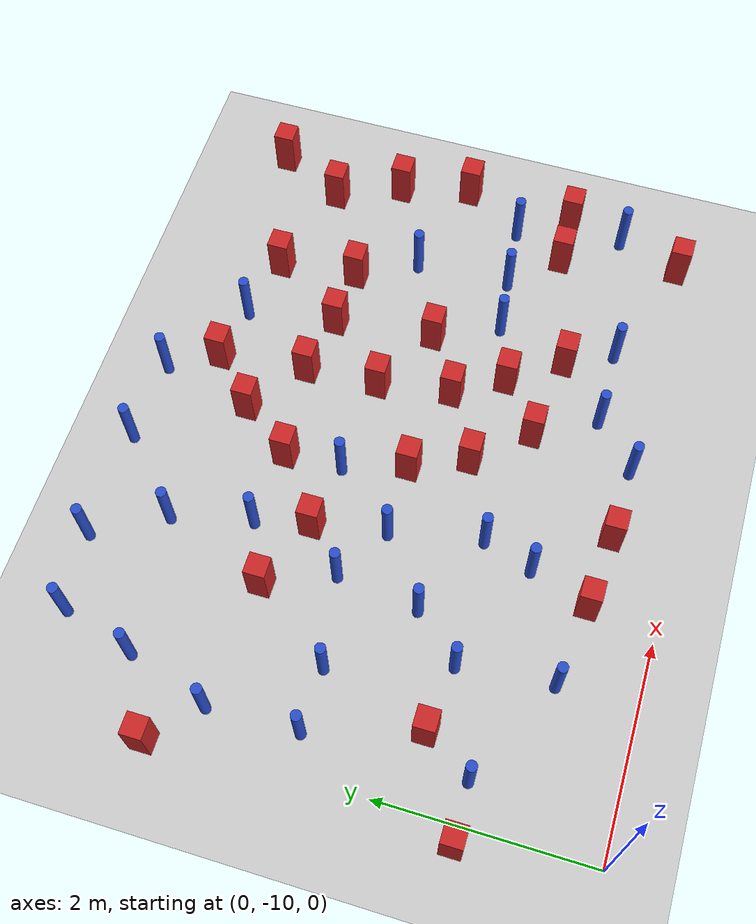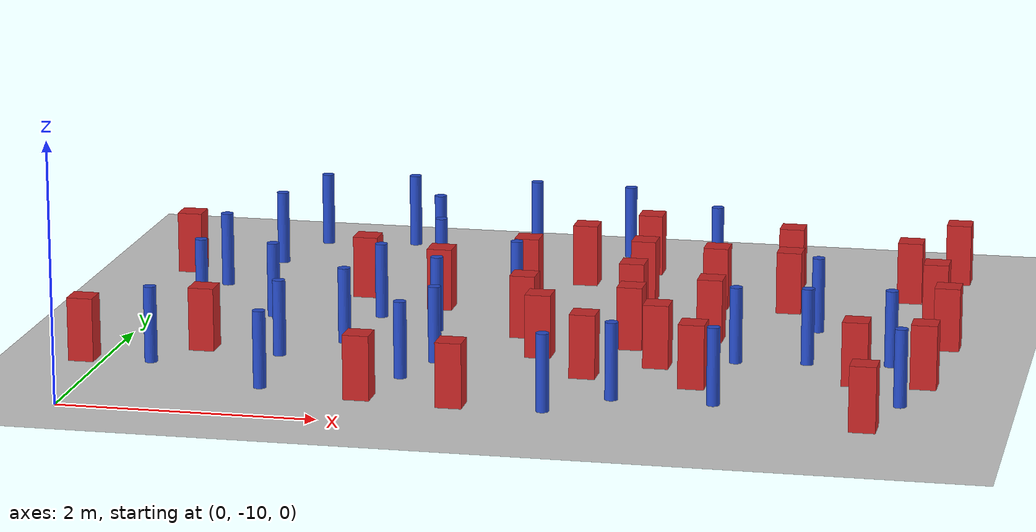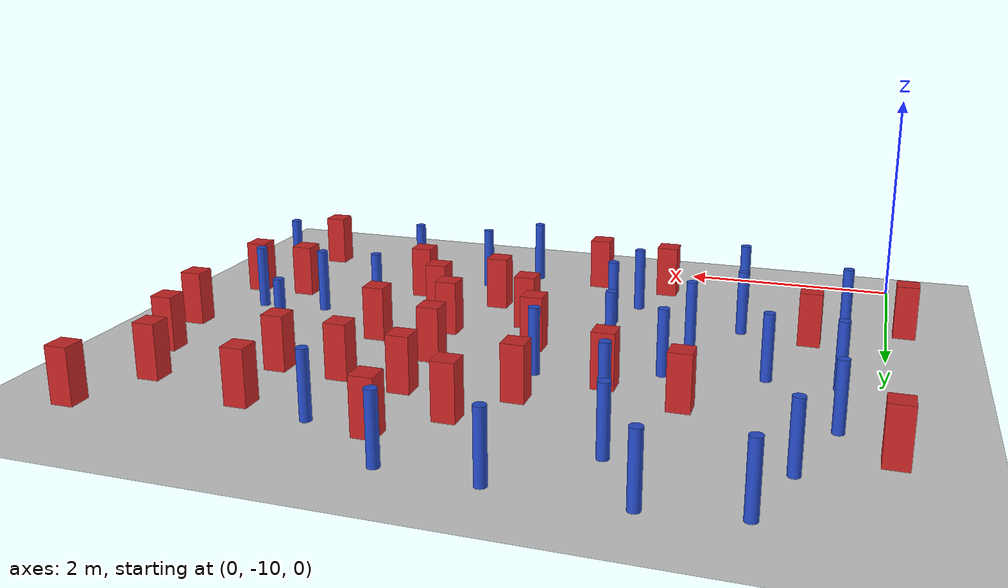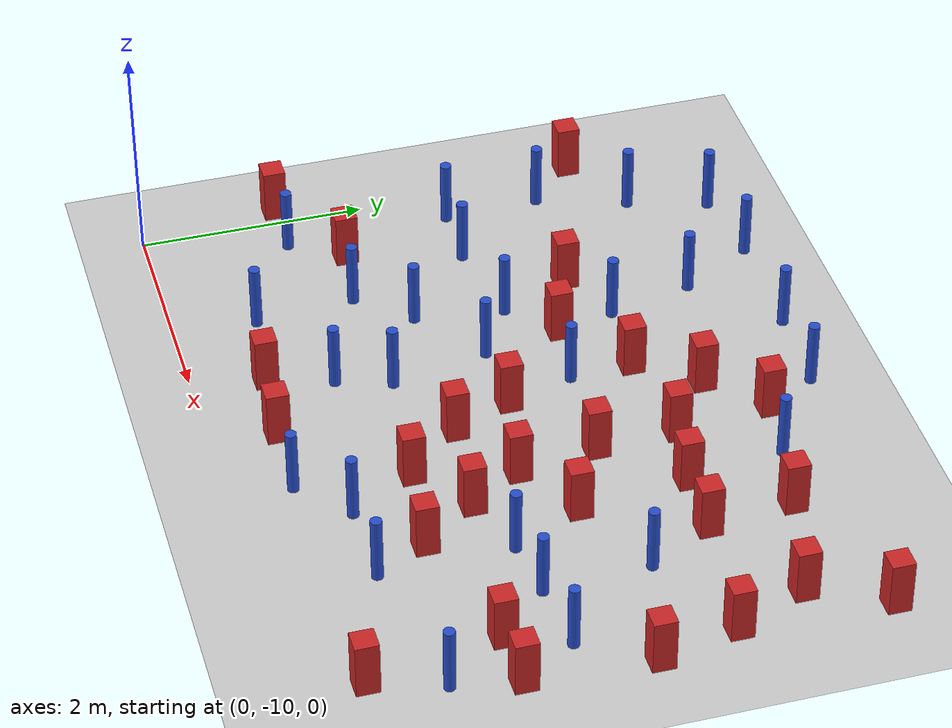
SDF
<sdf version="1.6">
 <world name="default">
  <model name="ground_plane">
   <static>1</static>
   <link name="link">
    <collision name="collision">
     <geometry><plane><normal>0 0 1</normal><size>100 100</size></plane></geometry>
     <surface><friction><ode><mu>100</mu><mu2>50</mu2></ode></friction></surface>
    </collision>
    <visual name="visual">
     <cast_shadows>0</cast_shadows>
     <geometry><plane><normal>0 0 1</normal><size>100 100</size></plane></geometry>
     <material>
      <ambient>1.0 1.0 1.0 1.0</ambient>
      <diffuse>0.8 0.8 0.8 1.0</diffuse>
      <specular>0.01 0.01 0.01 1.000000</specular>
     </material>
    </visual>
   </link>
  </model>
  <model name="square_post_obstacle0">
   <static>true</static>
   <pose>3.03235378317 -7.45072302917 1.91545236811e-07 -7.35059704564e-06 1.12565212e-07 2.39332434364e-05</pose>
   <link name="link">
    <pose>0 0 0.25 0 -0 0</pose>
    <inertial>
     <mass>100</mass>
     <inertia>
      <ixx>0.166667</ixx>
      <ixy>0</ixy>
      <ixz>0</ixz>
      <iyy>0.166667</iyy>
      <iyz>0</iyz>
      <izz>0.166667</izz>
     </inertia>
    </inertial>
    <collision name="collision"><geometry><box><size>.2 .2 .5</size></box></geometry></collision>
    <visual name="visual">
     <geometry><box><size>.2 .2 .5</size></box></geometry>
     <material>
      <script><name>Gazebo/Red</name><uri>file://media/materials/scripts/gazebo.material</uri></script>
     </material>
    </visual>
   </link>
  </model>
  <model name="pole_obstacle0">
   <static>true</static>
   <pose>5.95808666075 -7.75955042571 7.38925637345e-09 -8.47170692796e-08 1.24976764786e-08 -1.74513093032e-07</pose>
   <link name="link">
    <pose>0 0 0.3 0 -0 0</pose>
    <inertial>
     <mass>1</mass>
     <inertia><ixx>0.145833</ixx><ixy>0</ixy><ixz>0</ixz><iyy>0.145833</iyy><iyz>0</iyz><izz>0.125</izz></inertia>
    </inertial>
    <collision name="collision">
     <geometry><cylinder><radius>0.05</radius><length>.6</length></cylinder></geometry>
    </collision>
    <visual name="visual">
     <geometry><cylinder><radius>0.05</radius><length>.6</length></cylinder></geometry>
     <material>
      <script><name>Gazebo/Blue</name><uri>file://media/materials/scripts/gazebo.material</uri></script>
     </material>
    </visual>
   </link>
  </model>
  <model name="pole_obstacle6">
   <static>true</static>
   <pose>4.02126811115 -9.05385986758 7.38925637345e-09 -8.47170692799e-08 1.24976765044e-08 -1.74513093018e-07</pose>
   <link name="link">
    <pose>0 0 0.3 0 -0 0</pose>
    <inertial>
     <mass>1</mass>
     <inertia><ixx>0.145833</ixx><ixy>0</ixy><ixz>0</ixz><iyy>0.145833</iyy><iyz>0</iyz><izz>0.125</izz></inertia>
    </inertial>
    <collision name="collision">
     <geometry><cylinder><radius>0.05</radius><length>.6</length></cylinder></geometry>
    </collision>
    <visual name="visual">
     <geometry><cylinder><radius>0.05</radius><length>.6</length></cylinder></geometry>
     <material>
      <script><name>Gazebo/Blue</name><uri>file://media/materials/scripts/gazebo.material</uri></script>
     </material>
    </visual>
   </link>
  </model>
  <model name="square_post_obstacle13">
   <static>true</static>
   <pose>3.70461877562 -8.47410973414 1.91545236811e-07 -7.35059704564e-06 1.12565212e-07 2.39332434364e-05</pose>
   <link name="link">
    <pose>0 0 0.25 0 -0 0</pose>
    <inertial>
     <mass>100</mass>
     <inertia>
      <ixx>0.166667</ixx>
      <ixy>0</ixy>
      <ixz>0</ixz>
      <iyy>0.166667</iyy>
      <iyz>0</iyz>
      <izz>0.166667</izz>
     </inertia>
    </inertial>
    <collision name="collision"><geometry><box><size>.2 .2 .5</size></box></geometry></collision>
    <visual name="visual">
     <geometry><box><size>.2 .2 .5</size></box></geometry>
     <material>
      <script><name>Gazebo/Red</name><uri>file://media/materials/scripts/gazebo.material</uri></script>
     </material>
    </visual>
   </link>
  </model>
  <model name="pole_obstacle10">
   <static>true</static>
   <pose>3.57856025257 -9.45177462803 7.38925637345e-09 -8.47170692793e-08 1.24976764408e-08 -1.74513093041e-07</pose>
   <link name="link">
    <pose>0 0 0.3 0 -0 0</pose>
    <inertial>
     <mass>1</mass>
     <inertia><ixx>0.145833</ixx><ixy>0</ixy><ixz>0</ixz><iyy>0.145833</iyy><iyz>0</iyz><izz>0.125</izz></inertia>
    </inertial>
    <collision name="collision">
     <geometry><cylinder><radius>0.05</radius><length>.6</length></cylinder></geometry>
    </collision>
    <visual name="visual">
     <geometry><cylinder><radius>0.05</radius><length>.6</length></cylinder></geometry>
     <material>
      <script><name>Gazebo/Blue</name><uri>file://media/materials/scripts/gazebo.material</uri></script>
     </material>
    </visual>
   </link>
  </model>
  <model name="pole_obstacle11">
   <static>true</static>
   <pose>5.32283034793 -7.82426257273 7.38925637345e-09 -8.47170692796e-08 1.24976764786e-08 -1.74513093032e-07</pose>
   <link name="link">
    <pose>0 0 0.3 0 -0 0</pose>
    <inertial>
     <mass>1</mass>
     <inertia><ixx>0.145833</ixx><ixy>0</ixy><ixz>0</ixz><iyy>0.145833</iyy><iyz>0</iyz><izz>0.125</izz></inertia>
    </inertial>
    <collision name="collision">
     <geometry><cylinder><radius>0.05</radius><length>.6</length></cylinder></geometry>
    </collision>
    <visual name="visual">
     <geometry><cylinder><radius>0.05</radius><length>.6</length></cylinder></geometry>
     <material>
      <script><name>Gazebo/Blue</name><uri>file://media/materials/scripts/gazebo.material</uri></script>
     </material>
    </visual>
   </link>
  </model>
  <model name="pole_obstacle14">
   <static>true</static>
   <pose>2.60923949467 -4.84293142465 7.38925637345e-09 -8.47170692798e-08 1.24976765033e-08 -1.74513093019e-07</pose>
   <link name="link">
    <pose>0 0 0.3 0 -0 0</pose>
    <inertial>
     <mass>1</mass>
     <inertia><ixx>0.145833</ixx><ixy>0</ixy><ixz>0</ixz><iyy>0.145833</iyy><iyz>0</iyz><izz>0.125</izz></inertia>
    </inertial>
    <collision name="collision">
     <geometry><cylinder><radius>0.05</radius><length>.6</length></cylinder></geometry>
    </collision>
    <visual name="visual">
     <geometry><cylinder><radius>0.05</radius><length>.6</length></cylinder></geometry>
     <material>
      <script><name>Gazebo/Blue</name><uri>file://media/materials/scripts/gazebo.material</uri></script>
     </material>
    </visual>
   </link>
  </model>
  <model name="pole_obstacle32">
   <static>true</static>
   <pose>1.54902617877 -4.83356348568 7.38925637345e-09 -8.47170692799e-08 1.24976765033e-08 -1.74513093018e-07</pose>
   <link name="link">
    <pose>0 0 0.3 0 -0 0</pose>
    <inertial>
     <mass>1</mass>
     <inertia><ixx>0.145833</ixx><ixy>0</ixy><ixz>0</ixz><iyy>0.145833</iyy><iyz>0</iyz><izz>0.125</izz></inertia>
    </inertial>
    <collision name="collision">
     <geometry><cylinder><radius>0.05</radius><length>.6</length></cylinder></geometry>
    </collision>
    <visual name="visual">
     <geometry><cylinder><radius>0.05</radius><length>.6</length></cylinder></geometry>
     <material>
      <script><name>Gazebo/Blue</name><uri>file://media/materials/scripts/gazebo.material</uri></script>
     </material>
    </visual>
   </link>
  </model>
  <model name="pole_obstacle33">
   <static>true</static>
   <pose>2.84703641741 -6.84884851679 7.38925637345e-09 -8.47170692798e-08 1.24976765033e-08 -1.74513093019e-07</pose>
   <link name="link">
    <pose>0 0 0.3 0 -0 0</pose>
    <inertial>
     <mass>1</mass>
     <inertia><ixx>0.145833</ixx><ixy>0</ixy><ixz>0</ixz><iyy>0.145833</iyy><iyz>0</iyz><izz>0.125</izz></inertia>
    </inertial>
    <collision name="collision">
     <geometry><cylinder><radius>0.05</radius><length>.6</length></cylinder></geometry>
    </collision>
    <visual name="visual">
     <geometry><cylinder><radius>0.05</radius><length>.6</length></cylinder></geometry>
     <material>
      <script><name>Gazebo/Blue</name><uri>file://media/materials/scripts/gazebo.material</uri></script>
     </material>
    </visual>
   </link>
  </model>
  <model name="pole_obstacle35">
   <static>true</static>
   <pose>3.42085930414 -4.87880944352 7.38925637345e-09 -8.47170692798e-08 1.24976765033e-08 -1.74513093019e-07</pose>
   <link name="link">
    <pose>0 0 0.3 0 -0 0</pose>
    <inertial>
     <mass>1</mass>
     <inertia><ixx>0.145833</ixx><ixy>0</ixy><ixz>0</ixz><iyy>0.145833</iyy><iyz>0</iyz><izz>0.125</izz></inertia>
    </inertial>
    <collision name="collision">
     <geometry><cylinder><radius>0.05</radius><length>.6</length></cylinder></geometry>
    </collision>
    <visual name="visual">
     <geometry><cylinder><radius>0.05</radius><length>.6</length></cylinder></geometry>
     <material>
      <script><name>Gazebo/Blue</name><uri>file://media/materials/scripts/gazebo.material</uri></script>
     </material>
    </visual>
   </link>
  </model>
  <model name="pole_obstacle37">
   <static>true</static>
   <pose>2.50806555149 -8.32532895145 7.38925637345e-09 -8.47170692793e-08 1.24976764408e-08 -1.74513093041e-07</pose>
   <link name="link">
    <pose>0 0 0.3 0 -0 0</pose>
    <inertial>
     <mass>1</mass>
     <inertia><ixx>0.145833</ixx><ixy>0</ixy><ixz>0</ixz><iyy>0.145833</iyy><iyz>0</iyz><izz>0.125</izz></inertia>
    </inertial>
    <collision name="collision">
     <geometry><cylinder><radius>0.05</radius><length>.6</length></cylinder></geometry>
    </collision>
    <visual name="visual">
     <geometry><cylinder><radius>0.05</radius><length>.6</length></cylinder></geometry>
     <material>
      <script><name>Gazebo/Blue</name><uri>file://media/materials/scripts/gazebo.material</uri></script>
     </material>
    </visual>
   </link>
  </model>
  <model name="square_post_obstacle38">
   <static>true</static>
   <pose>5.75331840696 -8.27404047727 1.91545236811e-07 -7.35059704564e-06 1.12565212e-07 2.39332434364e-05</pose>
   <link name="link">
    <pose>0 0 0.25 0 -0 0</pose>
    <inertial>
     <mass>100</mass>
     <inertia>
      <ixx>0.166667</ixx>
      <ixy>0</ixy>
      <ixz>0</ixz>
      <iyy>0.166667</iyy>
      <iyz>0</iyz>
      <izz>0.166667</izz>
     </inertia>
    </inertial>
    <collision name="collision"><geometry><box><size>.2 .2 .5</size></box></geometry></collision>
    <visual name="visual">
     <geometry><box><size>.2 .2 .5</size></box></geometry>
     <material>
      <script><name>Gazebo/Red</name><uri>file://media/materials/scripts/gazebo.material</uri></script>
     </material>
    </visual>
   </link>
  </model>
  <model name="square_post_obstacle41">
   <static>true</static>
   <pose>1.54093194746 -6.51098047376 1.91545236811e-07 -7.35059704564e-06 1.12565212e-07 2.39332434364e-05</pose>
   <link name="link">
    <pose>0 0 0.25 0 -0 0</pose>
    <inertial>
     <mass>100</mass>
     <inertia>
      <ixx>0.166667</ixx>
      <ixy>0</ixy>
      <ixz>0</ixz>
      <iyy>0.166667</iyy>
      <iyz>0</iyz>
      <izz>0.166667</izz>
     </inertia>
    </inertial>
    <collision name="collision"><geometry><box><size>.2 .2 .5</size></box></geometry></collision>
    <visual name="visual">
     <geometry><box><size>.2 .2 .5</size></box></geometry>
     <material>
      <script><name>Gazebo/Red</name><uri>file://media/materials/scripts/gazebo.material</uri></script>
     </material>
    </visual>
   </link>
  </model>
  <model name="pole_obstacle49">
   <static>true</static>
   <pose>0.953303469608 -7.28886176376 7.38925637345e-09 -8.471706928e-08 1.24976765144e-08 -1.74513093012e-07</pose>
   <link name="link">
    <pose>0 0 0.3 0 -0 0</pose>
    <inertial>
     <mass>1</mass>
     <inertia><ixx>0.145833</ixx><ixy>0</ixy><ixz>0</ixz><iyy>0.145833</iyy><iyz>0</iyz><izz>0.125</izz></inertia>
    </inertial>
    <collision name="collision">
     <geometry><cylinder><radius>0.05</radius><length>.6</length></cylinder></geometry>
    </collision>
    <visual name="visual">
     <geometry><cylinder><radius>0.05</radius><length>.6</length></cylinder></geometry>
     <material>
      <script><name>Gazebo/Blue</name><uri>file://media/materials/scripts/gazebo.material</uri></script>
     </material>
    </visual>
   </link>
  </model>
  <model name="square_post_obstacle73">
   <static>true</static>
   <pose>2.88201155537 -9.42691295089 1.91545236811e-07 -7.35059704564e-06 1.12565212e-07 2.39332434364e-05</pose>
   <link name="link">
    <pose>0 0 0.25 0 -0 0</pose>
    <inertial>
     <mass>100</mass>
     <inertia>
      <ixx>0.166667</ixx>
      <ixy>0</ixy>
      <ixz>0</ixz>
      <iyy>0.166667</iyy>
      <iyz>0</iyz>
      <izz>0.166667</izz>
     </inertia>
    </inertial>
    <collision name="collision"><geometry><box><size>.2 .2 .5</size></box></geometry></collision>
    <visual name="visual">
     <geometry><box><size>.2 .2 .5</size></box></geometry>
     <material>
      <script><name>Gazebo/Red</name><uri>file://media/materials/scripts/gazebo.material</uri></script>
     </material>
    </visual>
   </link>
  </model>
  <model name="square_post_obstacle74">
   <static>true</static>
   <pose>4.89296649259 -5.56479319291 1.91545236811e-07 -7.35059704564e-06 1.12565212e-07 2.39332434364e-05</pose>
   <link name="link">
    <pose>0 0 0.25 0 -0 0</pose>
    <inertial>
     <mass>100</mass>
     <inertia>
      <ixx>0.166667</ixx>
      <ixy>0</ixy>
      <ixz>0</ixz>
      <iyy>0.166667</iyy>
      <iyz>0</iyz>
      <izz>0.166667</izz>
     </inertia>
    </inertial>
    <collision name="collision"><geometry><box><size>.2 .2 .5</size></box></geometry></collision>
    <visual name="visual">
     <geometry><box><size>.2 .2 .5</size></box></geometry>
     <material>
      <script><name>Gazebo/Red</name><uri>file://media/materials/scripts/gazebo.material</uri></script>
     </material>
    </visual>
   </link>
  </model>
  <model name="pole_obstacle84">
   <static>true</static>
   <pose>6.14940699391 -8.81329303102 7.38925637345e-09 -8.471706928e-08 1.24976765081e-08 -1.74513093015e-07</pose>
   <link name="link">
    <pose>0 0 0.3 0 -0 0</pose>
    <inertial>
     <mass>1</mass>
     <inertia><ixx>0.145833</ixx><ixy>0</ixy><ixz>0</ixz><iyy>0.145833</iyy><iyz>0</iyz><izz>0.125</izz></inertia>
    </inertial>
    <collision name="collision">
     <geometry><cylinder><radius>0.05</radius><length>.6</length></cylinder></geometry>
    </collision>
    <visual name="visual">
     <geometry><cylinder><radius>0.05</radius><length>.6</length></cylinder></geometry>
     <material>
      <script><name>Gazebo/Blue</name><uri>file://media/materials/scripts/gazebo.material</uri></script>
     </material>
    </visual>
   </link>
  </model>
  <model name="pole_obstacle87">
   <static>true</static>
   <pose>1.29187072466 -8.3794708407 7.38925637345e-09 -8.47170692798e-08 1.24976764881e-08 -1.74513093027e-07</pose>
   <link name="link">
    <pose>0 0 0.3 0 -0 0</pose>
    <inertial>
     <mass>1</mass>
     <inertia><ixx>0.145833</ixx><ixy>0</ixy><ixz>0</ixz><iyy>0.145833</iyy><iyz>0</iyz><izz>0.125</izz></inertia>
    </inertial>
    <collision name="collision">
     <geometry><cylinder><radius>0.05</radius><length>.6</length></cylinder></geometry>
    </collision>
    <visual name="visual">
     <geometry><cylinder><radius>0.05</radius><length>.6</length></cylinder></geometry>
     <material>
      <script><name>Gazebo/Blue</name><uri>file://media/materials/scripts/gazebo.material</uri></script>
     </material>
    </visual>
   </link>
  </model>
  <model name="square_post_obstacle82">
   <static>true</static>
   <pose>0.668629986887 -8.29789823071 1.91545236811e-07 -7.35059704564e-06 1.12565212e-07 2.39332434364e-05</pose>
   <link name="link">
    <pose>0 0 0.25 0 -0 0</pose>
    <inertial>
     <mass>100</mass>
     <inertia>
      <ixx>0.166667</ixx>
      <ixy>0</ixy>
      <ixz>0</ixz>
      <iyy>0.166667</iyy>
      <iyz>0</iyz>
      <izz>0.166667</izz>
     </inertia>
    </inertial>
    <collision name="collision"><geometry><box><size>.2 .2 .5</size></box></geometry></collision>
    <visual name="visual">
     <geometry><box><size>.2 .2 .5</size></box></geometry>
     <material>
      <script><name>Gazebo/Red</name><uri>file://media/materials/scripts/gazebo.material</uri></script>
     </material>
    </visual>
   </link>
  </model>
  <model name="pole_obstacle92">
   <static>true</static>
   <pose>1.69711403165 -7.92943717917 7.38925637345e-09 -8.47170692799e-08 1.24976765033e-08 -1.74513093018e-07</pose>
   <link name="link">
    <pose>0 0 0.3 0 -0 0</pose>
    <inertial>
     <mass>1</mass>
     <inertia><ixx>0.145833</ixx><ixy>0</ixy><ixz>0</ixz><iyy>0.145833</iyy><iyz>0</iyz><izz>0.125</izz></inertia>
    </inertial>
    <collision name="collision">
     <geometry><cylinder><radius>0.05</radius><length>.6</length></cylinder></geometry>
    </collision>
    <visual name="visual">
     <geometry><cylinder><radius>0.05</radius><length>.6</length></cylinder></geometry>
     <material>
      <script><name>Gazebo/Blue</name><uri>file://media/materials/scripts/gazebo.material</uri></script>
     </material>
    </visual>
   </link>
  </model>
  <model name="square_post_obstacle83">
   <static>true</static>
   <pose>2.83266618873 -6.3024516225 1.91545236811e-07 -7.35059704564e-06 1.12565212e-07 2.39332434364e-05</pose>
   <link name="link">
    <pose>0 0 0.25 0 -0 0</pose>
    <inertial>
     <mass>100</mass>
     <inertia>
      <ixx>0.166667</ixx>
      <ixy>0</ixy>
      <ixz>0</ixz>
      <iyy>0.166667</iyy>
      <iyz>0</iyz>
      <izz>0.166667</izz>
     </inertia>
    </inertial>
    <collision name="collision"><geometry><box><size>.2 .2 .5</size></box></geometry></collision>
    <visual name="visual">
     <geometry><box><size>.2 .2 .5</size></box></geometry>
     <material>
      <script><name>Gazebo/Red</name><uri>file://media/materials/scripts/gazebo.material</uri></script>
     </material>
    </visual>
   </link>
  </model>
  <model name="pole_obstacle96">
   <static>true</static>
   <pose>2.32926103049 -7.45607614981 7.38925637345e-09 -8.47170692798e-08 1.24976765033e-08 -1.74513093019e-07</pose>
   <link name="link">
    <pose>0 0 0.3 0 -0 0</pose>
    <inertial>
     <mass>1</mass>
     <inertia><ixx>0.145833</ixx><ixy>0</ixy><ixz>0</ixz><iyy>0.145833</iyy><iyz>0</iyz><izz>0.125</izz></inertia>
    </inertial>
    <collision name="collision">
     <geometry><cylinder><radius>0.05</radius><length>.6</length></cylinder></geometry>
    </collision>
    <visual name="visual">
     <geometry><cylinder><radius>0.05</radius><length>.6</length></cylinder></geometry>
     <material>
      <script><name>Gazebo/Blue</name><uri>file://media/materials/scripts/gazebo.material</uri></script>
     </material>
    </visual>
   </link>
  </model>
  <model name="square_post_obstacle84">
   <static>true</static>
   <pose>3.7747361427 -6.20009780479 1.91545236811e-07 -7.35059704564e-06 1.12565212e-07 2.39332434364e-05</pose>
   <link name="link">
    <pose>0 0 0.25 0 -0 0</pose>
    <inertial>
     <mass>100</mass>
     <inertia>
      <ixx>0.166667</ixx>
      <ixy>0</ixy>
      <ixz>0</ixz>
      <iyy>0.166667</iyy>
      <iyz>0</iyz>
      <izz>0.166667</izz>
     </inertia>
    </inertial>
    <collision name="collision"><geometry><box><size>.2 .2 .5</size></box></geometry></collision>
    <visual name="visual">
     <geometry><box><size>.2 .2 .5</size></box></geometry>
     <material>
      <script><name>Gazebo/Red</name><uri>file://media/materials/scripts/gazebo.material</uri></script>
     </material>
    </visual>
   </link>
  </model>
  <model name="pole_obstacle101">
   <static>true</static>
   <pose>4.78612297666 -9.0425380028 7.38925637345e-09 -8.471706928e-08 1.24976765081e-08 -1.74513093015e-07</pose>
   <link name="link">
    <pose>0 0 0.3 0 -0 0</pose>
    <inertial>
     <mass>1</mass>
     <inertia><ixx>0.145833</ixx><ixy>0</ixy><ixz>0</ixz><iyy>0.145833</iyy><iyz>0</iyz><izz>0.125</izz></inertia>
    </inertial>
    <collision name="collision">
     <geometry><cylinder><radius>0.05</radius><length>.6</length></cylinder></geometry>
    </collision>
    <visual name="visual">
     <geometry><cylinder><radius>0.05</radius><length>.6</length></cylinder></geometry>
     <material>
      <script><name>Gazebo/Blue</name><uri>file://media/materials/scripts/gazebo.material</uri></script>
     </material>
    </visual>
   </link>
  </model>
  <model name="square_post_obstacle91">
   <static>true</static>
   <pose>4.48863140282 -7.27508244954 1.91545236811e-07 -7.35059704564e-06 1.12565212e-07 2.39332434364e-05</pose>
   <link name="link">
    <pose>0 0 0.25 0 -0 0</pose>
    <inertial>
     <mass>100</mass>
     <inertia>
      <ixx>0.166667</ixx>
      <ixy>0</ixy>
      <ixz>0</ixz>
      <iyy>0.166667</iyy>
      <iyz>0</iyz>
      <izz>0.166667</izz>
     </inertia>
    </inertial>
    <collision name="collision"><geometry><box><size>.2 .2 .5</size></box></geometry></collision>
    <visual name="visual">
     <geometry><box><size>.2 .2 .5</size></box></geometry>
     <material>
      <script><name>Gazebo/Red</name><uri>file://media/materials/scripts/gazebo.material</uri></script>
     </material>
    </visual>
   </link>
  </model>
  <model name="pole_obstacle103">
   <static>true</static>
   <pose>0.356736249376 -7.2783823474 7.38925637345e-09 -8.471706928e-08 1.24976765079e-08 -1.74513093015e-07</pose>
   <link name="link">
    <pose>0 0 0.3 0 -0 0</pose>
    <inertial>
     <mass>1</mass>
     <inertia><ixx>0.145833</ixx><ixy>0</ixy><ixz>0</ixz><iyy>0.145833</iyy><iyz>0</iyz><izz>0.125</izz></inertia>
    </inertial>
    <collision name="collision">
     <geometry><cylinder><radius>0.05</radius><length>.6</length></cylinder></geometry>
    </collision>
    <visual name="visual">
     <geometry><cylinder><radius>0.05</radius><length>.6</length></cylinder></geometry>
     <material>
      <script><name>Gazebo/Blue</name><uri>file://media/materials/scripts/gazebo.material</uri></script>
     </material>
    </visual>
   </link>
  </model>
  <model name="square_post_obstacle95">
   <static>true</static>
   <pose>3.21959620704 -5.78762131966 1.91545236811e-07 -7.35059704564e-06 1.12565212e-07 2.39332434364e-05</pose>
   <link name="link">
    <pose>0 0 0.25 0 -0 0</pose>
    <inertial>
     <mass>100</mass>
     <inertia>
      <ixx>0.166667</ixx>
      <ixy>0</ixy>
      <ixz>0</ixz>
      <iyy>0.166667</iyy>
      <iyz>0</iyz>
      <izz>0.166667</izz>
     </inertia>
    </inertial>
    <collision name="collision"><geometry><box><size>.2 .2 .5</size></box></geometry></collision>
    <visual name="visual">
     <geometry><box><size>.2 .2 .5</size></box></geometry>
     <material>
      <script><name>Gazebo/Red</name><uri>file://media/materials/scripts/gazebo.material</uri></script>
     </material>
    </visual>
   </link>
  </model>
  <model name="square_post_obstacle96">
   <static>true</static>
   <pose>4.20351650143 -8.09346550458 1.91545236811e-07 -7.35059704564e-06 1.12565212e-07 2.39332434364e-05</pose>
   <link name="link">
    <pose>0 0 0.25 0 -0 0</pose>
    <inertial>
     <mass>100</mass>
     <inertia>
      <ixx>0.166667</ixx>
      <ixy>0</ixy>
      <ixz>0</ixz>
      <iyy>0.166667</iyy>
      <iyz>0</iyz>
      <izz>0.166667</izz>
     </inertia>
    </inertial>
    <collision name="collision"><geometry><box><size>.2 .2 .5</size></box></geometry></collision>
    <visual name="visual">
     <geometry><box><size>.2 .2 .5</size></box></geometry>
     <material>
      <script><name>Gazebo/Red</name><uri>file://media/materials/scripts/gazebo.material</uri></script>
     </material>
    </visual>
   </link>
  </model>
  <model name="pole_obstacle111">
   <static>true</static>
   <pose>0.807580830368 -4.93312595332 7.38925637345e-09 -8.471706928e-08 1.24976765086e-08 -1.74513093015e-07</pose>
   <link name="link">
    <pose>0 0 0.3 0 -0 0</pose>
    <inertial>
     <mass>1</mass>
     <inertia><ixx>0.145833</ixx><ixy>0</ixy><ixz>0</ixz><iyy>0.145833</iyy><iyz>0</iyz><izz>0.125</izz></inertia>
    </inertial>
    <collision name="collision">
     <geometry><cylinder><radius>0.05</radius><length>.6</length></cylinder></geometry>
    </collision>
    <visual name="visual">
     <geometry><cylinder><radius>0.05</radius><length>.6</length></cylinder></geometry>
     <material>
      <script><name>Gazebo/Blue</name><uri>file://media/materials/scripts/gazebo.material</uri></script>
     </material>
    </visual>
   </link>
  </model>
  <model name="square_post_obstacle104">
   <static>true</static>
   <pose>5.95421312081 -9.4335130322 1.91545236811e-07 -7.35059704564e-06 1.12565212e-07 2.39332434364e-05</pose>
   <link name="link">
    <pose>0 0 0.25 0 -0 0</pose>
    <inertial>
     <mass>100</mass>
     <inertia>
      <ixx>0.166667</ixx>
      <ixy>0</ixy>
      <ixz>0</ixz>
      <iyy>0.166667</iyy>
      <iyz>0</iyz>
      <izz>0.166667</izz>
     </inertia>
    </inertial>
    <collision name="collision"><geometry><box><size>.2 .2 .5</size></box></geometry></collision>
    <visual name="visual">
     <geometry><box><size>.2 .2 .5</size></box></geometry>
     <material>
      <script><name>Gazebo/Red</name><uri>file://media/materials/scripts/gazebo.material</uri></script>
     </material>
    </visual>
   </link>
  </model>
  <model name="pole_obstacle125">
   <static>true</static>
   <pose>0.333119051174 -6.42329488841 7.38925637345e-09 -8.471706928e-08 1.24976765079e-08 -1.74513093015e-07</pose>
   <link name="link">
    <pose>0 0 0.3 0 -0 0</pose>
    <inertial>
     <mass>1</mass>
     <inertia><ixx>0.145833</ixx><ixy>0</ixy><ixz>0</ixz><iyy>0.145833</iyy><iyz>0</iyz><izz>0.125</izz></inertia>
    </inertial>
    <collision name="collision">
     <geometry><cylinder><radius>0.05</radius><length>.6</length></cylinder></geometry>
    </collision>
    <visual name="visual">
     <geometry><cylinder><radius>0.05</radius><length>.6</length></cylinder></geometry>
     <material>
      <script><name>Gazebo/Blue</name><uri>file://media/materials/scripts/gazebo.material</uri></script>
     </material>
    </visual>
   </link>
  </model>
  <model name="pole_obstacle127">
   <static>true</static>
   <pose>5.27932744459 -6.89397688747 7.38925637345e-09 -8.47170692796e-08 1.24976764786e-08 -1.74513093032e-07</pose>
   <link name="link">
    <pose>0 0 0.3 0 -0 0</pose>
    <inertial>
     <mass>1</mass>
     <inertia><ixx>0.145833</ixx><ixy>0</ixy><ixz>0</ixz><iyy>0.145833</iyy><iyz>0</iyz><izz>0.125</izz></inertia>
    </inertial>
    <collision name="collision">
     <geometry><cylinder><radius>0.05</radius><length>.6</length></cylinder></geometry>
    </collision>
    <visual name="visual">
     <geometry><cylinder><radius>0.05</radius><length>.6</length></cylinder></geometry>
     <material>
      <script><name>Gazebo/Blue</name><uri>file://media/materials/scripts/gazebo.material</uri></script>
     </material>
    </visual>
   </link>
  </model>
  <model name="square_post_obstacle113">
   <static>true</static>
   <pose>-0.0776508363008 -6.02166428387 1.91545236811e-07 -7.35059704564e-06 1.12565212e-07 2.39332434364e-05</pose>
   <link name="link">
    <pose>0 0 0.25 0 -0 0</pose>
    <inertial>
     <mass>100</mass>
     <inertia>
      <ixx>0.166667</ixx>
      <ixy>0</ixy>
      <ixz>0</ixz>
      <iyy>0.166667</iyy>
      <iyz>0</iyz>
      <izz>0.166667</izz>
     </inertia>
    </inertial>
    <collision name="collision"><geometry><box><size>.2 .2 .5</size></box></geometry></collision>
    <visual name="visual">
     <geometry><box><size>.2 .2 .5</size></box></geometry>
     <material>
      <script><name>Gazebo/Red</name><uri>file://media/materials/scripts/gazebo.material</uri></script>
     </material>
    </visual>
   </link>
  </model>
  <model name="pole_obstacle130">
   <static>true</static>
   <pose>2.09309644037 -6.24570424946 7.38925637345e-09 -8.47170692798e-08 1.24976765033e-08 -1.74513093019e-07</pose>
   <link name="link">
    <pose>0 0 0.3 0 -0 0</pose>
    <inertial>
     <mass>1</mass>
     <inertia><ixx>0.145833</ixx><ixy>0</ixy><ixz>0</ixz><iyy>0.145833</iyy><iyz>0</iyz><izz>0.125</izz></inertia>
    </inertial>
    <collision name="collision">
     <geometry><cylinder><radius>0.05</radius><length>.6</length></cylinder></geometry>
    </collision>
    <visual name="visual">
     <geometry><cylinder><radius>0.05</radius><length>.6</length></cylinder></geometry>
     <material>
      <script><name>Gazebo/Blue</name><uri>file://media/materials/scripts/gazebo.material</uri></script>
     </material>
    </visual>
   </link>
  </model>
  <model name="pole_obstacle131">
   <static>true</static>
   <pose>1.80474031233 -7.14058997991 7.38925637345e-09 -8.47170692799e-08 1.24976765033e-08 -1.74513093018e-07</pose>
   <link name="link">
    <pose>0 0 0.3 0 -0 0</pose>
    <inertial>
     <mass>1</mass>
     <inertia><ixx>0.145833</ixx><ixy>0</ixy><ixz>0</ixz><iyy>0.145833</iyy><iyz>0</iyz><izz>0.125</izz></inertia>
    </inertial>
    <collision name="collision">
     <geometry><cylinder><radius>0.05</radius><length>.6</length></cylinder></geometry>
    </collision>
    <visual name="visual">
     <geometry><cylinder><radius>0.05</radius><length>.6</length></cylinder></geometry>
     <material>
      <script><name>Gazebo/Blue</name><uri>file://media/materials/scripts/gazebo.material</uri></script>
     </material>
    </visual>
   </link>
  </model>
  <model name="pole_obstacle135">
   <static>true</static>
   <pose>2.34840887435 -8.7993237154 7.38925637345e-09 -8.47170692793e-08 1.24976764408e-08 -1.74513093041e-07</pose>
   <link name="link">
    <pose>0 0 0.3 0 -0 0</pose>
    <inertial>
     <mass>1</mass>
     <inertia><ixx>0.145833</ixx><ixy>0</ixy><ixz>0</ixz><iyy>0.145833</iyy><iyz>0</iyz><izz>0.125</izz></inertia>
    </inertial>
    <collision name="collision">
     <geometry><cylinder><radius>0.05</radius><length>.6</length></cylinder></geometry>
    </collision>
    <visual name="visual">
     <geometry><cylinder><radius>0.05</radius><length>.6</length></cylinder></geometry>
     <material>
      <script><name>Gazebo/Blue</name><uri>file://media/materials/scripts/gazebo.material</uri></script>
     </material>
    </visual>
   </link>
  </model>
  <model name="square_post_obstacle124">
   <static>true</static>
   <pose>4.55847532211 -8.58673547656 1.91545236811e-07 -7.35059704564e-06 1.12565212e-07 2.39332434364e-05</pose>
   <link name="link">
    <pose>0 0 0.25 0 -0 0</pose>
    <inertial>
     <mass>100</mass>
     <inertia>
      <ixx>0.166667</ixx>
      <ixy>0</ixy>
      <ixz>0</ixz>
      <iyy>0.166667</iyy>
      <iyz>0</iyz>
      <izz>0.166667</izz>
     </inertia>
    </inertial>
    <collision name="collision"><geometry><box><size>.2 .2 .5</size></box></geometry></collision>
    <visual name="visual">
     <geometry><box><size>.2 .2 .5</size></box></geometry>
     <material>
      <script><name>Gazebo/Red</name><uri>file://media/materials/scripts/gazebo.material</uri></script>
     </material>
    </visual>
   </link>
  </model>
  <model name="square_post_obstacle127">
   <static>true</static>
   <pose>5.89403588995 -5.83280870268 1.91545236811e-07 -7.35059704564e-06 1.12565212e-07 2.39332434364e-05</pose>
   <link name="link">
    <pose>0 0 0.25 0 -0 0</pose>
    <inertial>
     <mass>100</mass>
     <inertia>
      <ixx>0.166667</ixx>
      <ixy>0</ixy>
      <ixz>0</ixz>
      <iyy>0.166667</iyy>
      <iyz>0</iyz>
      <izz>0.166667</izz>
     </inertia>
    </inertial>
    <collision name="collision"><geometry><box><size>.2 .2 .5</size></box></geometry></collision>
    <visual name="visual">
     <geometry><box><size>.2 .2 .5</size></box></geometry>
     <material>
      <script><name>Gazebo/Red</name><uri>file://media/materials/scripts/gazebo.material</uri></script>
     </material>
    </visual>
   </link>
  </model>
  <model name="square_post_obstacle128">
   <static>true</static>
   <pose>3.80616921865 -6.91331966926 1.91545236811e-07 -7.35059704564e-06 1.12565212e-07 2.39332434364e-05</pose>
   <link name="link">
    <pose>0 0 0.25 0 -0 0</pose>
    <inertial>
     <mass>100</mass>
     <inertia>
      <ixx>0.166667</ixx>
      <ixy>0</ixy>
      <ixz>0</ixz>
      <iyy>0.166667</iyy>
      <iyz>0</iyz>
      <izz>0.166667</izz>
     </inertia>
    </inertial>
    <collision name="collision"><geometry><box><size>.2 .2 .5</size></box></geometry></collision>
    <visual name="visual">
     <geometry><box><size>.2 .2 .5</size></box></geometry>
     <material>
      <script><name>Gazebo/Red</name><uri>file://media/materials/scripts/gazebo.material</uri></script>
     </material>
    </visual>
   </link>
  </model>
  <model name="square_post_obstacle146">
   <static>true</static>
   <pose>2.16452007404 -9.36451453233 1.91545236811e-07 -7.35059704564e-06 1.12565212e-07 2.39332434364e-05</pose>
   <link name="link">
    <pose>0 0 0.25 0 -0 0</pose>
    <inertial>
     <mass>100</mass>
     <inertia>
      <ixx>0.166667</ixx>
      <ixy>0</ixy>
      <ixz>0</ixz>
      <iyy>0.166667</iyy>
      <iyz>0</iyz>
      <izz>0.166667</izz>
     </inertia>
    </inertial>
    <collision name="collision"><geometry><box><size>.2 .2 .5</size></box></geometry></collision>
    <visual name="visual">
     <geometry><box><size>.2 .2 .5</size></box></geometry>
     <material>
      <script><name>Gazebo/Red</name><uri>file://media/materials/scripts/gazebo.material</uri></script>
     </material>
    </visual>
   </link>
  </model>
  <model name="square_post_obstacle148">
   <static>true</static>
   <pose>-0.160610262279 -8.76265140407 1.91545236811e-07 -7.35059704564e-06 1.12565212e-07 2.39332434364e-05</pose>
   <link name="link">
    <pose>0 0 0.25 0 -0 0</pose>
    <inertial>
     <mass>100</mass>
     <inertia>
      <ixx>0.166667</ixx>
      <ixy>0</ixy>
      <ixz>0</ixz>
      <iyy>0.166667</iyy>
      <iyz>0</iyz>
      <izz>0.166667</izz>
     </inertia>
    </inertial>
    <collision name="collision"><geometry><box><size>.2 .2 .5</size></box></geometry></collision>
    <visual name="visual">
     <geometry><box><size>.2 .2 .5</size></box></geometry>
     <material>
      <script><name>Gazebo/Red</name><uri>file://media/materials/scripts/gazebo.material</uri></script>
     </material>
    </visual>
   </link>
  </model>
  <model name="pole_obstacle166">
   <static>true</static>
   <pose>1.91594490239 -5.48794362934 7.38925637345e-09 -8.47170692799e-08 1.24976765033e-08 -1.74513093018e-07</pose>
   <link name="link">
    <pose>0 0 0.3 0 -0 0</pose>
    <inertial>
     <mass>1</mass>
     <inertia><ixx>0.145833</ixx><ixy>0</ixy><ixz>0</ixz><iyy>0.145833</iyy><iyz>0</iyz><izz>0.125</izz></inertia>
    </inertial>
    <collision name="collision">
     <geometry><cylinder><radius>0.05</radius><length>.6</length></cylinder></geometry>
    </collision>
    <visual name="visual">
     <geometry><cylinder><radius>0.05</radius><length>.6</length></cylinder></geometry>
     <material>
      <script><name>Gazebo/Blue</name><uri>file://media/materials/scripts/gazebo.material</uri></script>
     </material>
    </visual>
   </link>
  </model>
  <model name="square_post_obstacle159">
   <static>true</static>
   <pose>6.33046536103 -7.16580078019 1.91545236811e-07 -7.35059704564e-06 1.12565212e-07 2.39332434364e-05</pose>
   <link name="link">
    <pose>0 0 0.25 0 -0 0</pose>
    <inertial>
     <mass>100</mass>
     <inertia>
      <ixx>0.166667</ixx>
      <ixy>0</ixy>
      <ixz>0</ixz>
      <iyy>0.166667</iyy>
      <iyz>0</iyz>
      <izz>0.166667</izz>
     </inertia>
    </inertial>
    <collision name="collision"><geometry><box><size>.2 .2 .5</size></box></geometry></collision>
    <visual name="visual">
     <geometry><box><size>.2 .2 .5</size></box></geometry>
     <material>
      <script><name>Gazebo/Red</name><uri>file://media/materials/scripts/gazebo.material</uri></script>
     </material>
    </visual>
   </link>
  </model>
  <model name="pole_obstacle170">
   <static>true</static>
   <pose>4.24455447902 -5.42393687474 7.38925637345e-09 -8.47170692796e-08 1.24976764786e-08 -1.74513093032e-07</pose>
   <link name="link">
    <pose>0 0 0.3 0 -0 0</pose>
    <inertial>
     <mass>1</mass>
     <inertia><ixx>0.145833</ixx><ixy>0</ixy><ixz>0</ixz><iyy>0.145833</iyy><iyz>0</iyz><izz>0.125</izz></inertia>
    </inertial>
    <collision name="collision">
     <geometry><cylinder><radius>0.05</radius><length>.6</length></cylinder></geometry>
    </collision>
    <visual name="visual">
     <geometry><cylinder><radius>0.05</radius><length>.6</length></cylinder></geometry>
     <material>
      <script><name>Gazebo/Blue</name><uri>file://media/materials/scripts/gazebo.material</uri></script>
     </material>
    </visual>
   </link>
  </model>
  <model name="square_post_obstacle167">
   <static>true</static>
   <pose>3.68433460433 -5.34673133508 1.91545236811e-07 -7.35059704564e-06 1.12565212e-07 2.39332434364e-05</pose>
   <link name="link">
    <pose>0 0 0.25 0 -0 0</pose>
    <inertial>
     <mass>100</mass>
     <inertia>
      <ixx>0.166667</ixx>
      <ixy>0</ixy>
      <ixz>0</ixz>
      <iyy>0.166667</iyy>
      <iyz>0</iyz>
      <izz>0.166667</izz>
     </inertia>
    </inertial>
    <collision name="collision"><geometry><box><size>.2 .2 .5</size></box></geometry></collision>
    <visual name="visual">
     <geometry><box><size>.2 .2 .5</size></box></geometry>
     <material>
      <script><name>Gazebo/Red</name><uri>file://media/materials/scripts/gazebo.material</uri></script>
     </material>
    </visual>
   </link>
  </model>
  <model name="square_post_obstacle169">
   <static>true</static>
   <pose>4.38257716318 -6.30112132354 1.91545236811e-07 -7.35059704564e-06 1.12565212e-07 2.39332434364e-05</pose>
   <link name="link">
    <pose>0 0 0.25 0 -0 0</pose>
    <inertial>
     <mass>100</mass>
     <inertia>
      <ixx>0.166667</ixx>
      <ixy>0</ixy>
      <ixz>0</ixz>
      <iyy>0.166667</iyy>
      <iyz>0</iyz>
      <izz>0.166667</izz>
     </inertia>
    </inertial>
    <collision name="collision"><geometry><box><size>.2 .2 .5</size></box></geometry></collision>
    <visual name="visual">
     <geometry><box><size>.2 .2 .5</size></box></geometry>
     <material>
      <script><name>Gazebo/Red</name><uri>file://media/materials/scripts/gazebo.material</uri></script>
     </material>
    </visual>
   </link>
  </model>
  <model name="pole_obstacle181">
   <static>true</static>
   <pose>1.37323056644 -9.26421169341 7.38925637345e-09 -8.47170692798e-08 1.24976764881e-08 -1.74513093027e-07</pose>
   <link name="link">
    <pose>0 0 0.3 0 -0 0</pose>
    <inertial>
     <mass>1</mass>
     <inertia><ixx>0.145833</ixx><ixy>0</ixy><ixz>0</ixz><iyy>0.145833</iyy><iyz>0</iyz><izz>0.125</izz></inertia>
    </inertial>
    <collision name="collision">
     <geometry><cylinder><radius>0.05</radius><length>.6</length></cylinder></geometry>
    </collision>
    <visual name="visual">
     <geometry><cylinder><radius>0.05</radius><length>.6</length></cylinder></geometry>
     <material>
      <script><name>Gazebo/Blue</name><uri>file://media/materials/scripts/gazebo.material</uri></script>
     </material>
    </visual>
   </link>
  </model>
  <model name="pole_obstacle185">
   <static>true</static>
   <pose>0.370205486994 -8.75325233149 7.38925637345e-09 -8.47170692796e-08 1.24976764724e-08 -1.74513093036e-07</pose>
   <link name="link">
    <pose>0 0 0.3 0 -0 0</pose>
    <inertial>
     <mass>1</mass>
     <inertia><ixx>0.145833</ixx><ixy>0</ixy><ixz>0</ixz><iyy>0.145833</iyy><iyz>0</iyz><izz>0.125</izz></inertia>
    </inertial>
    <collision name="collision">
     <geometry><cylinder><radius>0.05</radius><length>.6</length></cylinder></geometry>
    </collision>
    <visual name="visual">
     <geometry><cylinder><radius>0.05</radius><length>.6</length></cylinder></geometry>
     <material>
      <script><name>Gazebo/Blue</name><uri>file://media/materials/scripts/gazebo.material</uri></script>
     </material>
    </visual>
   </link>
  </model>
  <model name="square_post_obstacle178">
   <static>true</static>
   <pose>6.22035996845 -5.17676125367 1.91545236811e-07 -7.35059704564e-06 1.12565212e-07 2.39332434364e-05</pose>
   <link name="link">
    <pose>0 0 0.25 0 -0 0</pose>
    <inertial>
     <mass>100</mass>
     <inertia>
      <ixx>0.166667</ixx>
      <ixy>0</ixy>
      <ixz>0</ixz>
      <iyy>0.166667</iyy>
      <iyz>0</iyz>
      <izz>0.166667</izz>
     </inertia>
    </inertial>
    <collision name="collision"><geometry><box><size>.2 .2 .5</size></box></geometry></collision>
    <visual name="visual">
     <geometry><box><size>.2 .2 .5</size></box></geometry>
     <material>
      <script><name>Gazebo/Red</name><uri>file://media/materials/scripts/gazebo.material</uri></script>
     </material>
    </visual>
   </link>
  </model>
  <model name="square_post_obstacle190">
   <static>true</static>
   <pose>3.26353169232 -7.98364357279 1.91545236811e-07 -7.35059704564e-06 1.12565212e-07 2.39332434364e-05</pose>
   <link name="link">
    <pose>0 0 0.25 0 -0 0</pose>
    <inertial>
     <mass>100</mass>
     <inertia>
      <ixx>0.166667</ixx>
      <ixy>0</ixy>
      <ixz>0</ixz>
      <iyy>0.166667</iyy>
      <iyz>0</iyz>
      <izz>0.166667</izz>
     </inertia>
    </inertial>
    <collision name="collision"><geometry><box><size>.2 .2 .5</size></box></geometry></collision>
    <visual name="visual">
     <geometry><box><size>.2 .2 .5</size></box></geometry>
     <material>
      <script><name>Gazebo/Red</name><uri>file://media/materials/scripts/gazebo.material</uri></script>
     </material>
    </visual>
   </link>
  </model>
  <model name="square_post_obstacle197">
   <static>true</static>
   <pose>6.16733120335 -6.46843334628 1.91545236811e-07 -7.35059704564e-06 1.12565212e-07 2.39332434364e-05</pose>
   <link name="link">
    <pose>0 0 0.25 0 -0 0</pose>
    <inertial>
     <mass>100</mass>
     <inertia>
      <ixx>0.166667</ixx>
      <ixy>0</ixy>
      <ixz>0</ixz>
      <iyy>0.166667</iyy>
      <iyz>0</iyz>
      <izz>0.166667</izz>
     </inertia>
    </inertial>
    <collision name="collision"><geometry><box><size>.2 .2 .5</size></box></geometry></collision>
    <visual name="visual">
     <geometry><box><size>.2 .2 .5</size></box></geometry>
     <material>
      <script><name>Gazebo/Red</name><uri>file://media/materials/scripts/gazebo.material</uri></script>
     </material>
    </visual>
   </link>
  </model>
  <model name="square_post_obstacle198">
   <static>true</static>
   <pose>2.21290196498 -6.76779589164 1.91545236811e-07 -7.35059704564e-06 1.12565212e-07 2.39332434364e-05</pose>
   <link name="link">
    <pose>0 0 0.25 0 -0 0</pose>
    <inertial>
     <mass>100</mass>
     <inertia>
      <ixx>0.166667</ixx>
      <ixy>0</ixy>
      <ixz>0</ixz>
      <iyy>0.166667</iyy>
      <iyz>0</iyz>
      <izz>0.166667</izz>
     </inertia>
    </inertial>
    <collision name="collision"><geometry><box><size>.2 .2 .5</size></box></geometry></collision>
    <visual name="visual">
     <geometry><box><size>.2 .2 .5</size></box></geometry>
     <material>
      <script><name>Gazebo/Red</name><uri>file://media/materials/scripts/gazebo.material</uri></script>
     </material>
    </visual>
   </link>
  </model>
  <model name="pole_obstacle195">
   <static>true</static>
   <pose>4.77723388404 -7.89013153896 7.38925637345e-09 -8.47170692796e-08 1.24976764786e-08 -1.74513093032e-07</pose>
   <link name="link">
    <pose>0 0 0.3 0 -0 0</pose>
    <inertial>
     <mass>1</mass>
     <inertia><ixx>0.145833</ixx><ixy>0</ixy><ixz>0</ixz><iyy>0.145833</iyy><iyz>0</iyz><izz>0.125</izz></inertia>
    </inertial>
    <collision name="collision">
     <geometry><cylinder><radius>0.05</radius><length>.6</length></cylinder></geometry>
    </collision>
    <visual name="visual">
     <geometry><cylinder><radius>0.05</radius><length>.6</length></cylinder></geometry>
     <material>
      <script><name>Gazebo/Blue</name><uri>file://media/materials/scripts/gazebo.material</uri></script>
     </material>
    </visual>
   </link>
  </model>
  <model name="pole_obstacle213">
   <static>true</static>
   <pose>0.595649868854 -5.63384500624 7.38925637345e-09 -8.471706928e-08 1.24976765086e-08 -1.74513093015e-07</pose>
   <link name="link">
    <pose>0 0 0.3 0 -0 0</pose>
    <inertial>
     <mass>1</mass>
     <inertia><ixx>0.145833</ixx><ixy>0</ixy><ixz>0</ixz><iyy>0.145833</iyy><iyz>0</iyz><izz>0.125</izz></inertia>
    </inertial>
    <collision name="collision">
     <geometry><cylinder><radius>0.05</radius><length>.6</length></cylinder></geometry>
    </collision>
    <visual name="visual">
     <geometry><cylinder><radius>0.05</radius><length>.6</length></cylinder></geometry>
     <material>
      <script><name>Gazebo/Blue</name><uri>file://media/materials/scripts/gazebo.material</uri></script>
     </material>
    </visual>
   </link>
  </model>
  <model name="square_post_obstacle216">
   <static>true</static>
   <pose>3.91532571204 -7.62337423042 1.91545236811e-07 -7.35059704564e-06 1.12565212e-07 2.39332434364e-05</pose>
   <link name="link">
    <pose>0 0 0.25 0 -0 0</pose>
    <inertial>
     <mass>100</mass>
     <inertia>
      <ixx>0.166667</ixx>
      <ixy>0</ixy>
      <ixz>0</ixz>
      <iyy>0.166667</iyy>
      <iyz>0</iyz>
      <izz>0.166667</izz>
     </inertia>
    </inertial>
    <collision name="collision"><geometry><box><size>.2 .2 .5</size></box></geometry></collision>
    <visual name="visual">
     <geometry><box><size>.2 .2 .5</size></box></geometry>
     <material>
      <script><name>Gazebo/Red</name><uri>file://media/materials/scripts/gazebo.material</uri></script>
     </material>
    </visual>
   </link>
  </model>
  <model name="square_post_obstacle225">
   <static>true</static>
   <pose>6.2690999648 -8.25280001192 1.91545236811e-07 -7.35059704564e-06 1.12565212e-07 2.39332434364e-05</pose>
   <link name="link">
    <pose>0 0 0.25 0 -0 0</pose>
    <inertial>
     <mass>100</mass>
     <inertia>
      <ixx>0.166667</ixx>
      <ixy>0</ixy>
      <ixz>0</ixz>
      <iyy>0.166667</iyy>
      <iyz>0</iyz>
      <izz>0.166667</izz>
     </inertia>
    </inertial>
    <collision name="collision"><geometry><box><size>.2 .2 .5</size></box></geometry></collision>
    <visual name="visual">
     <geometry><box><size>.2 .2 .5</size></box></geometry>
     <material>
      <script><name>Gazebo/Red</name><uri>file://media/materials/scripts/gazebo.material</uri></script>
     </material>
    </visual>
   </link>
  </model>
  <model name="square_post_obstacle231">
   <static>true</static>
   <pose>4.9783799648 -6.32551001192 1.91545236811e-07 -7.35059704564e-06 1.12565212e-07 2.39332434364e-05</pose>
   <link name="link">
    <pose>0 0 0.25 0 -0 0</pose>
    <inertial>
     <mass>100</mass>
     <inertia>
      <ixx>0.166667</ixx>
      <ixy>0</ixy>
      <ixz>0</ixz>
      <iyy>0.166667</iyy>
      <iyz>0</iyz>
      <izz>0.166667</izz>
     </inertia>
    </inertial>
    <collision name="collision"><geometry><box><size>.2 .2 .5</size></box></geometry></collision>
    <visual name="visual">
     <geometry><box><size>.2 .2 .5</size></box></geometry>
     <material>
      <script><name>Gazebo/Red</name><uri>file://media/materials/scripts/gazebo.material</uri></script>
     </material>
    </visual>
   </link>
  </model>
 </world>
</sdf>
